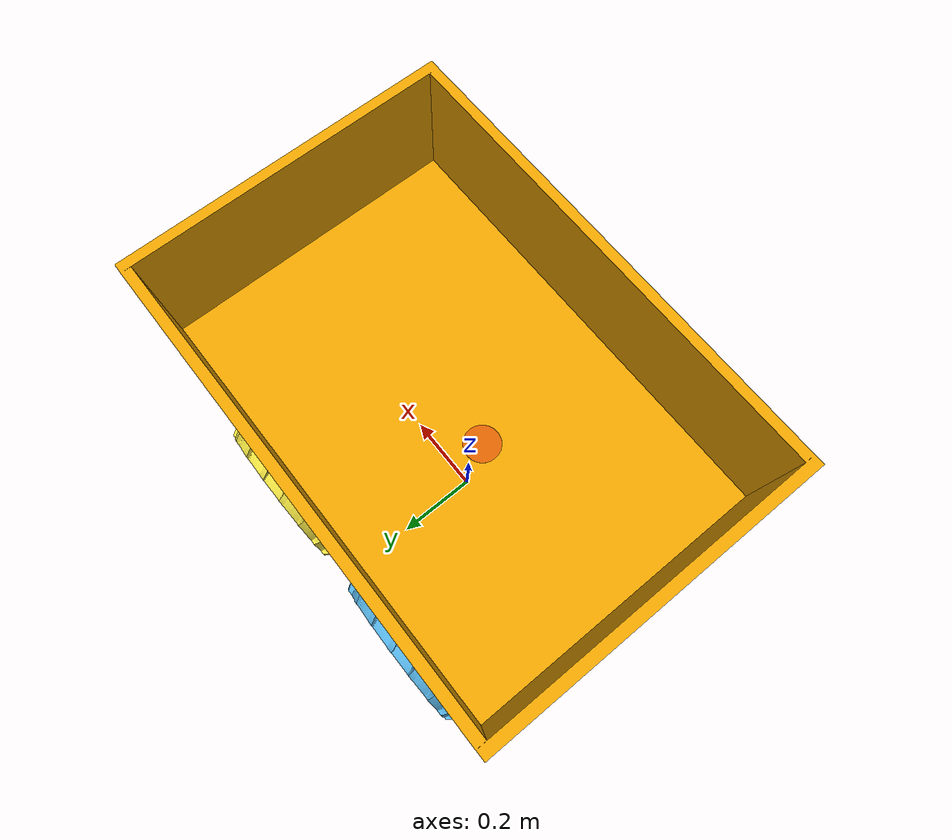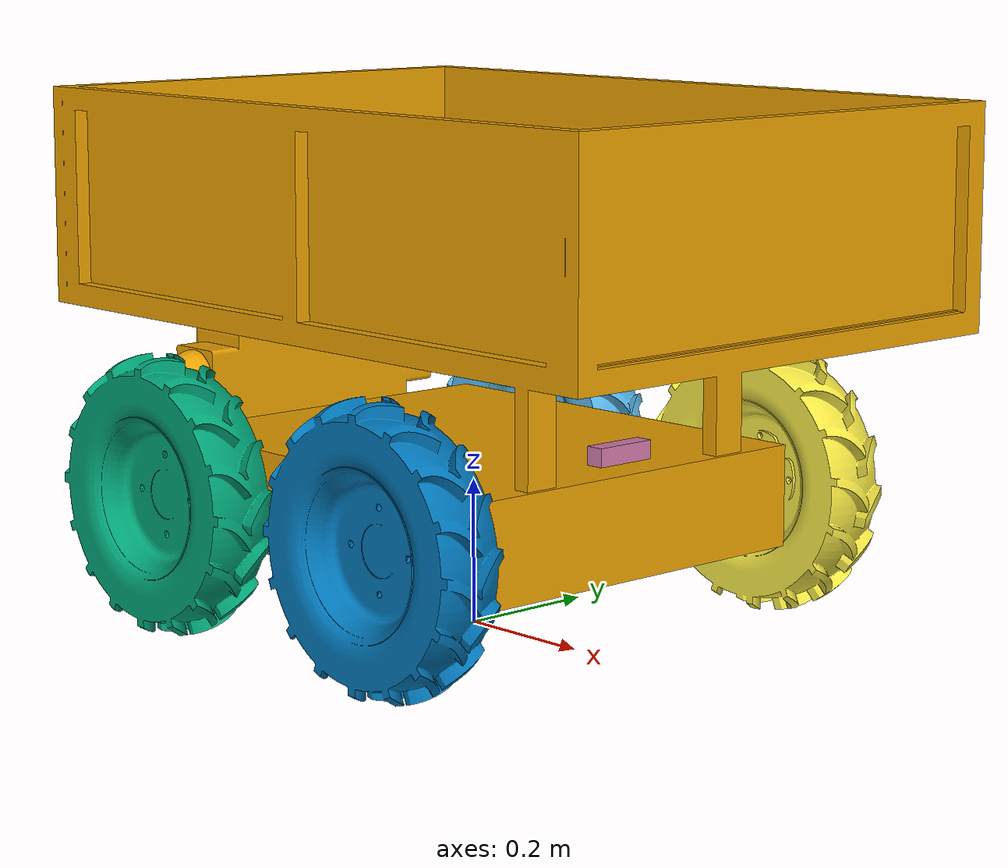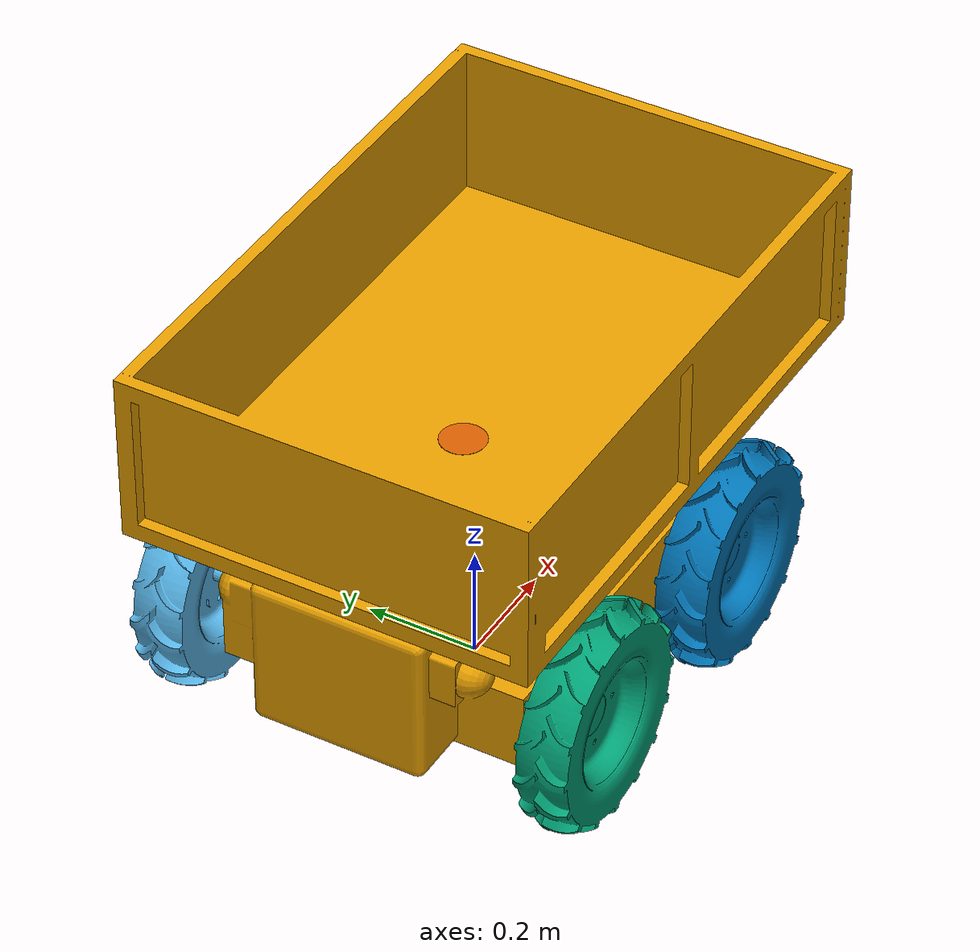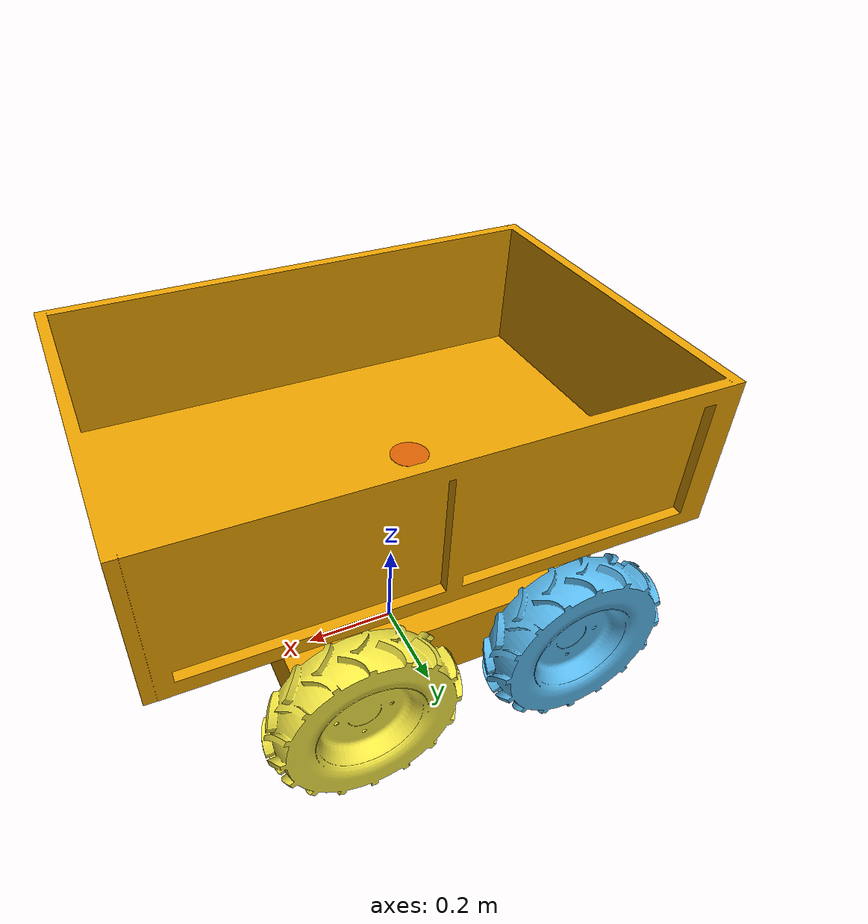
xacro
<?xml version="1.0"?>
<robot xmlns:xacro="http://www.ros.org/wiki/xacro" name="talicska">

  <xacro:arg name="tcp_host"                  default="192.168.68.60"/>
  <xacro:arg name="tcp_port"                  default="8234"/>
  <xacro:arg name="socket_timeout"            default="0.05"/>
  <xacro:arg name="address"                   default="0x80"/>
  <xacro:arg name="encoder_counts_per_rev"    default="70300"/>
  <xacro:arg name="gear_ratio"                default="1.0"/>
  <xacro:arg name="motion_strategy"           default="speed_accel"/>
  <xacro:arg name="duty_accel_rate"           default="50000"/>
  <xacro:arg name="duty_decel_rate"           default="50000"/>
  <xacro:arg name="default_acceleration"      default="15000"/>
  <xacro:arg name="duty_max_rad_s"            default="20.5"/>
  <xacro:arg name="buffer_depth"              default="4"/>
  <xacro:arg name="auto_home_on_startup"      default="false"/>
  <xacro:arg name="position_limits_enabled"   default="false"/>
  <xacro:arg name="encoder_stuck_limit"       default="50"/>
  <xacro:arg name="encoder_runaway_limit"     default="5"/>
  <xacro:arg name="encoder_comm_fail_limit"   default="10"/>
  <xacro:arg name="encoder_max_speed_rad_s"   default="30.0"/>
  <xacro:arg name="qpps"                     default="230000"/>
  <xacro:arg name="invert_left_motor"        default="true"/>
  <xacro:arg name="invert_right_motor"       default="true"/>

  <xacro:arg name="mesh_base" default="package://robot_description"/>
  <xacro:property name="mesh_base" value="$(arg mesh_base)"/>

  <!-- ============================================================
       GEOMETRY CONSTANTS  (metres)
       ============================================================ -->
  <!-- Chassis (alváz) -->
  <xacro:property name="chassis_length"    value="0.64"/>
  <xacro:property name="chassis_width"     value="0.55"/>
  <xacro:property name="chassis_height"    value="0.14"/>
  <xacro:property name="chassis_bottom_z"  value="0.12"/>
  <!-- Chassis centre in base_link frame:
       chassis front = +0.325, rear = -0.315, centre = +0.005 -->
  <xacro:property name="chassis_x_offset"  value="0.005"/>
  <xacro:property name="chassis_z_centre"  value="${chassis_bottom_z + chassis_height / 2.0}"/>

  <!-- Wheels -->
  <xacro:property name="wheel_radius"      value="0.1925"/>
  <xacro:property name="wheel_width"       value="0.1"/>
  <xacro:property name="wheel_separation"  value="0.7"/>
  <xacro:property name="axle_offset"       value="0.225"/>

  <!-- Tilt platform (felépítmény) -->
  <xacro:property name="platform_length"   value="1.1"/>
  <xacro:property name="platform_width"    value="0.75"/>
  <xacro:property name="platform_height"   value="0.3"/>
  <xacro:property name="hinge_x"           value="0.305"/>
  <xacro:property name="hinge_z"           value="0.26"/>
  <xacro:property name="platform_cg_x"     value="-0.32"/>
  <xacro:property name="platform_cg_z"     value="0.34"/>

  <!-- Mass distribution  (total ≈ 108 kg) -->
  <xacro:property name="chassis_mass"      value="84.0"/>
  <xacro:property name="wheel_mass"        value="6.0"/>
  <xacro:property name="platform_mass"     value="8.0"/>

  <!-- ============================================================
       INERTIA HELPERS
       ============================================================ -->
  <xacro:macro name="box_inertia" params="m x y z">
    <inertial>
      <mass value="${m}"/>
      <inertia
        ixx="${m * (y*y + z*z) / 12.0}"
        iyy="${m * (x*x + z*z) / 12.0}"
        izz="${m * (x*x + y*y) / 12.0}"
        ixy="0" ixz="0" iyz="0"/>
    </inertial>
  </xacro:macro>

  <xacro:macro name="cylinder_inertia" params="m r h">
    <inertial>
      <mass value="${m}"/>
      <inertia
        ixx="${m * (3*r*r + h*h) / 12.0}"
        iyy="${m * (3*r*r + h*h) / 12.0}"
        izz="${m * r*r / 2.0}"
        ixy="0" ixz="0" iyz="0"/>
    </inertial>
  </xacro:macro>

  <xacro:macro name="wheel" params="name x y reflect">
    <link name="${name}">
      <visual>
        <origin xyz="0 0 0" rpy="0 0 ${pi}"/>
        <geometry>
          <mesh filename="${mesh_base}/meshes/wheel.stl" scale="1 ${reflect} 1"/>
        </geometry>
      </visual>
      <collision>
        <origin xyz="0 0 0" rpy="${pi/2} 0 0"/>
        <geometry>
          <cylinder radius="${wheel_radius}" length="${wheel_width}"/>
        </geometry>
      </collision>
      <xacro:cylinder_inertia m="${wheel_mass}" r="${wheel_radius}" h="${wheel_width}"/>
    </link>

    <joint name="${name}_joint" type="continuous">
      <parent link="base_link"/>
      <child  link="${name}"/>
      <origin xyz="${x} ${y} ${wheel_radius}" rpy="0 0 0"/>
      <axis   xyz="0 1 0"/>
    </joint>
  </xacro:macro>

  <!-- ============================================================
       BASE LINK  (rotation centre, at ground plane z=0)
       ============================================================ -->
  <link name="base_link">
    <visual>
      <!-- STL origin aligned to model nullpoint; lift to chassis_z_centre (0.19m) -->
      <origin xyz="0 0 ${chassis_z_centre}" rpy="0 0 0"/>
      <geometry>
        <mesh filename="${mesh_base}/meshes/chassis.stl"/>
      </geometry>
    </visual>
    <collision>
      <origin xyz="${chassis_x_offset} 0 ${chassis_z_centre}" rpy="0 0 0"/>
      <geometry>
        <box size="${chassis_length} ${chassis_width} ${chassis_height}"/>
      </geometry>
    </collision>
    <xacro:box_inertia m="${chassis_mass}"
      x="${chassis_length}" y="${chassis_width}" z="${chassis_height}"/>
  </link>

  <!-- ============================================================
       WHEELS
       ============================================================ -->
  <!-- Rear — driven by RoboClaw via ros2_control -->
  <xacro:wheel name="rear_left_wheel"   x="${-axle_offset}" y="${ wheel_separation / 2.0}" reflect="1"/>
  <xacro:wheel name="rear_right_wheel"  x="${-axle_offset}" y="${-wheel_separation / 2.0}" reflect="-1"/>
  <link name="front_left_wheel">
    <visual>
      <origin xyz="0 0 0" rpy="0 0 ${pi}"/>
      <geometry>
        <mesh filename="${mesh_base}/meshes/wheel.stl" scale="1 1 1"/>
      </geometry>
    </visual>
    <collision>
      <origin xyz="0 0 0" rpy="${pi/2} 0 0"/>
      <geometry><cylinder radius="${wheel_radius}" length="${wheel_width}"/></geometry>
    </collision>
    <xacro:cylinder_inertia m="${wheel_mass}" r="${wheel_radius}" h="${wheel_width}"/>
  </link>
  <joint name="front_left_wheel_joint" type="continuous">
    <parent link="base_link"/>
    <child  link="front_left_wheel"/>
    <origin xyz="${axle_offset} ${wheel_separation / 2.0} ${wheel_radius}" rpy="0 0 0"/>
    <axis   xyz="0 1 0"/>
    <mimic  joint="rear_left_wheel_joint" multiplier="1.0" offset="0.0"/>
  </joint>

  <link name="front_right_wheel">
    <visual>
      <origin xyz="0 0 0" rpy="0 0 ${pi}"/>
      <geometry>
        <mesh filename="${mesh_base}/meshes/wheel.stl" scale="1 -1 1"/>
      </geometry>
    </visual>
    <collision>
      <origin xyz="0 0 0" rpy="${pi/2} 0 0"/>
      <geometry><cylinder radius="${wheel_radius}" length="${wheel_width}"/></geometry>
    </collision>
    <xacro:cylinder_inertia m="${wheel_mass}" r="${wheel_radius}" h="${wheel_width}"/>
  </link>
  <joint name="front_right_wheel_joint" type="continuous">
    <parent link="base_link"/>
    <child  link="front_right_wheel"/>
    <origin xyz="${axle_offset} ${-wheel_separation / 2.0} ${wheel_radius}" rpy="0 0 0"/>
    <axis   xyz="0 1 0"/>
    <mimic  joint="rear_right_wheel_joint" multiplier="1.0" offset="0.0"/>
  </joint>

  <link name="lidar_link">
    <visual>
      <geometry><cylinder radius="0.04" length="0.07"/></geometry>
    </visual>
    <collision>
      <geometry><cylinder radius="0.04" length="0.07"/></geometry>
    </collision>
    <inertial>
      <mass value="0.17"/>
      <inertia ixx="0.0001" iyy="0.0001" izz="0.0001" ixy="0" ixz="0" iyz="0"/>
    </inertial>
  </link>
  <joint name="lidar_joint" type="fixed">
    <parent link="base_link"/>
    <child  link="lidar_link"/>
    <origin xyz="-0.035 0.0 0.430" rpy="0 0 0"/>
  </joint>

  <link name="camera_link">
    <visual>
      <geometry><box size="0.025 0.09 0.025"/></geometry>
    </visual>
    <collision>
      <geometry><box size="0.025 0.09 0.025"/></geometry>
    </collision>
    <inertial>
      <mass value="0.072"/>
      <inertia ixx="0.0001" iyy="0.0001" izz="0.0001" ixy="0" ixz="0" iyz="0"/>
    </inertial>
  </link>
  <joint name="camera_joint" type="fixed">
    <parent link="base_link"/>
    <child  link="camera_link"/>
    <origin xyz="0.2825 0.0 0.28" rpy="0 0 0"/>
  </joint>

  <link name="imu_link">
    <visual>
      <geometry><box size="0.02 0.02 0.005"/></geometry>
    </visual>
    <inertial>
      <mass value="0.003"/>
      <inertia ixx="0.0000001" iyy="0.0000001" izz="0.0000001" ixy="0" ixz="0" iyz="0"/>
    </inertial>
  </link>
  <joint name="imu_joint" type="fixed">
    <parent link="base_link"/>
    <child  link="imu_link"/>
    <!-- xyz mérve (2026-05-07): 700mm robot elejétől → x=-0.135 (base_link 565mm a fronttól), chassis aljától 250mm → z=0.370. rpy=0: chip face-up, X→előre = REP-103 natív. -->
    <origin xyz="-0.135 0.0 0.370" rpy="0 0 0"/>
  </joint>

  <link name="tilt_platform_link">
    <visual>
      <geometry>
        <mesh filename="${mesh_base}/meshes/platform.stl"/>
      </geometry>
    </visual>
    <collision>
      <origin xyz="${platform_cg_x} 0 ${platform_cg_z}" rpy="0 0 0"/>
      <geometry>
        <box size="${platform_length} ${platform_width} ${platform_height}"/>
      </geometry>
    </collision>
    <xacro:box_inertia m="${platform_mass}"
      x="${platform_length}" y="${platform_width}" z="${platform_height}"/>
  </link>
  <joint name="tilt_joint" type="revolute">
    <parent link="base_link"/>
    <child  link="tilt_platform_link"/>
    <origin xyz="${hinge_x} 0 ${hinge_z}" rpy="0 0 0"/>
    <axis   xyz="0 1 0"/>
    <limit  lower="0.0" upper="${pi/4}" effort="500.0" velocity="0.5"/>
  </joint>

  <ros2_control name="RoboClawSystem" type="system">
    <hardware>
      <plugin>roboclaw_hardware/RoboClawHardware</plugin>

      <param name="tcp_host">$(arg tcp_host)</param>
      <param name="tcp_port">$(arg tcp_port)</param>
      <param name="socket_timeout">$(arg socket_timeout)</param>
      <param name="address">$(arg address)</param>

      <param name="wheel_radius">${wheel_radius}</param>
      <param name="wheel_separation">${wheel_separation}</param>
      <param name="encoder_counts_per_rev">$(arg encoder_counts_per_rev)</param>
      <param name="gear_ratio">$(arg gear_ratio)</param>

      <param name="motion_strategy">$(arg motion_strategy)</param>
      <param name="default_acceleration">$(arg default_acceleration)</param>
      <param name="duty_accel_rate">$(arg duty_accel_rate)</param>
      <param name="duty_decel_rate">$(arg duty_decel_rate)</param>
      <param name="duty_max_rad_s">$(arg duty_max_rad_s)</param>
      <param name="buffer_depth">$(arg buffer_depth)</param>

      <param name="auto_home_on_startup">$(arg auto_home_on_startup)</param>
      <param name="position_limits_enabled">$(arg position_limits_enabled)</param>

      <param name="encoder_stuck_limit">$(arg encoder_stuck_limit)</param>
      <param name="encoder_runaway_limit">$(arg encoder_runaway_limit)</param>
      <param name="encoder_comm_fail_limit">$(arg encoder_comm_fail_limit)</param>
      <param name="encoder_max_speed_rad_s">$(arg encoder_max_speed_rad_s)</param>
      <param name="qpps">$(arg qpps)</param>

      <param name="invert_left_motor">$(arg invert_left_motor)</param>
      <param name="invert_right_motor">$(arg invert_right_motor)</param>
    </hardware>

    <joint name="rear_right_wheel_joint">
      <command_interface name="velocity">
        <param name="min">-50</param>
        <param name="max">50</param>
      </command_interface>
      <state_interface name="position"/>
      <state_interface name="velocity"/>
    </joint>

    <joint name="rear_left_wheel_joint">
      <command_interface name="velocity">
        <param name="min">-50</param>
        <param name="max">50</param>
      </command_interface>
      <state_interface name="position"/>
      <state_interface name="velocity"/>
    </joint>

    <gpio name="diagnostics">
      <state_interface name="main_battery_v"/>
      <state_interface name="temperature_c"/>
      <state_interface name="error_status"/>
      <state_interface name="current_left_a"/>
      <state_interface name="current_right_a"/>
      <state_interface name="encoder_health"/>
    </gpio>
  </ros2_control>

</robot>
